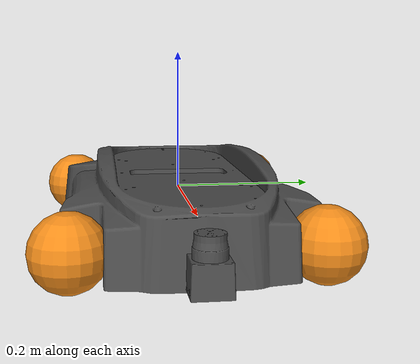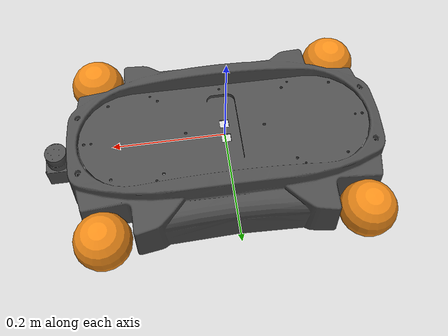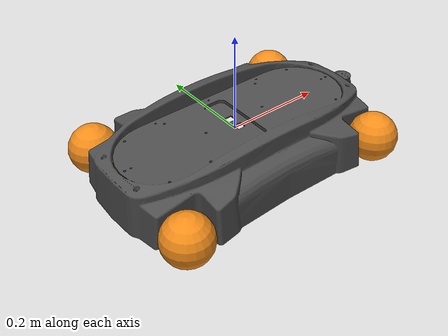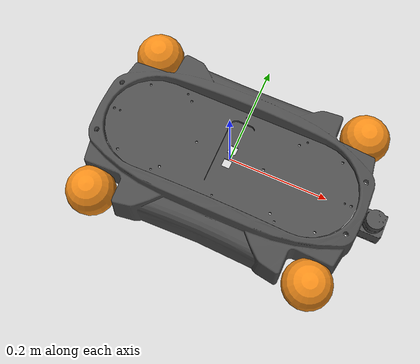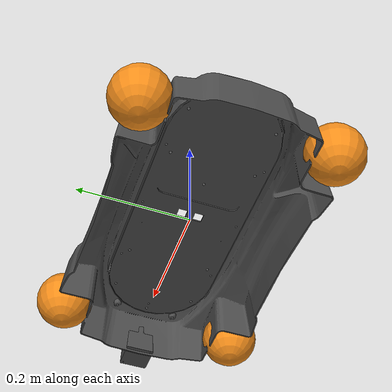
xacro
<?xml version="1.0"?>
<robot  xmlns:xacro="http://ros.org/wiki/xacro"
       name="youbot" >

  <!-- The following xacro:included files set up definitions of parts of the robot body -->
  <!-- misc common stuff? -->
  <xacro:include filename="$(find youbot_description)/urdf/common.xacro" />

  <!-- youbot base -->
  <xacro:include filename="$(find youbot_description)/urdf/youbot_base/base.urdf.xacro" />

  <!-- generic simulator_gazebo plugins for starting mechanism control, ros time, ros battery -->
  <xacro:include filename="$(find youbot_description)/gazebo/gazebo.urdf.xacro" />

  <!-- materials for visualization -->
  <xacro:include filename="$(find youbot_description)/urdf/materials.urdf.xacro" />

  <!-- Now we can start using the macros xacro:included above to define the actual youbot -->

  <xacro:youbot_base name="base"/>

</robot>

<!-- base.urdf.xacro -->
<robot xmlns:xacro="http://ros.org/wiki/xacro">

	<!-- sensors -->
	<xacro:include filename="$(find youbot_description)/urdf/sensors/hokuyo_urg04_laser.urdf.xacro"/>

	<xacro:include filename="$(find youbot_description)/urdf/youbot_base/base.gazebo.xacro" />
	<xacro:include filename="$(find youbot_description)/urdf/youbot_base/base.transmission.xacro" />

 	<!-- simplified box collision geometry for base -->
  	<property name="base_size_x" value="0.570" />
  	<property name="base_size_y" value="0.360" />
  	<property name="base_size_z" value="0.100" />
	<property name="base_mass" value="22.0" />

	<property name="caster_offset_x" value="0.228"  />
  	<property name="caster_offset_y" value="0.158"  />
  	<property name="caster_offset_z" value="-0.034" />
	<property name="caster_mass" value="0.1" />

	<property name="wheel_offset_x" value="0.0"  />
  	<property name="wheel_offset_y" value="0.0"  />
  	<property name="wheel_offset_z" value="0.0" />
	<property name="wheel_mass" value="0.4" />

	<property name="wheel_radius" value="0.05" />
	<property name="wheel_length" value="0.005" />

	<property name="caster_joint_damping" value="1.0" />
	<property name="caster_joint_friction" value="1.0" />
	<property name="caster_joint_effort" value="30" />
	<property name="caster_joint_velocity" value="10" />
	<property name="caster_joint_safety_k_velocity" value="10.0" />

	<property name="wheel_joint_damping" value="1.0" />
	<property name="wheel_joint_friction" value="1.0" />
	<property name="wheel_joint_effort" value="30" />
	<property name="wheel_joint_velocity" value="10" />
	<property name="wheel_joint_safety_k_velocity" value="10.0" />

	<xacro:macro name="youbot_base" params="name">

		<link name="${name}_footprint">
    		</link>

    		<joint name="${name}_footprint_fixer" type="fixed">
      			<origin xyz="0 0 0" rpy="0 0 0" />
      			<child link="${name}_footprint_inertia" />
      			<parent link="${name}_footprint"/>
    		</joint>

		<link name="${name}_footprint_inertia">
      			<inertial>
        			<mass value="0.1" />
        			<origin xyz="0 0 ${-base_size_z / 2.0}" rpy="0 0 0" />
        			<inertia ixx="1.0" ixy="0.0" ixz="0.0"
                 			iyy="1.0" iyz="0.0" izz="1.0" />
      				</inertial>
      			<visual>
        			<origin xyz="0 0 0" rpy="0 0 0" />
        			<geometry>
          				<box size="0.001 0.001 0.001" />
        			</geometry>
               			<material name="Red" />
      			</visual>
      			<collision>
        			<origin xyz="0 0 ${-base_size_z / 2.0}" rpy="0 0 0" />
        			<geometry>
          				<box size="0.001 0.001 0.001" />
        			</geometry>
      			</collision>
    		</link>

    		<joint name="${name}_footprint_joint" type="fixed">
      			<origin xyz="0 0 0" rpy="0 0 0" />
      			<child link="${name}_link" />
      			<parent link="${name}_footprint"/>
    		</joint>

		<link name="${name}_link">
      			<inertial>
        			<mass value="${base_mass}" />
        			<origin xyz="0 0 0" />
        			<inertia ixx="5.652232699207" ixy="-0.009719934438" ixz="1.293988226423"
                 			iyy="5.669473158652" iyz="-0.007379583694" izz="3.683196351726" />
      				</inertial>
      			<visual>
        			<origin xyz="0 0 0" rpy="0 0 0" />
        			<geometry>
          				<mesh filename="package://youbot_description/meshes/youbot_base/base.dae"/>
        			</geometry>
        			<material name="DarkGrey"/>
      			</visual>
      			<collision>
        			<origin xyz="0 0 0" rpy="0 0 0" />
        			<geometry>
					<mesh filename="package://youbot_description/meshes/youbot_base/base_convex.dae"/>
	       			</geometry>
      			</collision>
    		</link>

		<!-- base laser front -->

    		<xacro:hokuyo_urg04_laser name="${name}_laser_front" parent="${name}" ros_topic="scan_front" update_rate="10" min_angle="-1.57" max_angle="1.57" >
     			 <origin xyz="0.3 0 -0.03" rpy="0 0 0" />
    		</xacro:hokuyo_urg04_laser>

	<!-- front left wheel -->
		<joint name="caster_joint_fl" type="continuous">
			<origin xyz="${caster_offset_x} ${caster_offset_y} ${caster_offset_z}" rpy="0 0 0" />
      			<axis xyz="0 0 1" />
      			<limit effort="${caster_joint_effort}" velocity="${caster_joint_velocity}"/>
      			<dynamics damping="${caster_joint_damping}" friction="${caster_joint_friction}" />
			<safety_controller k_velocity="${caster_joint_safety_k_velocity}" />
			<parent link="${name}_link"/>
      			<child link="caster_link_fl" />
    		</joint>

		<link name="caster_link_fl">
      			<inertial>
        			<mass value="${caster_mass}" />
        			<origin xyz="0 0 0" />
        			<inertia  ixx="0.012411765597" ixy="-0.000711733678" ixz="0.00050272983"
                  			iyy="0.015218160428" iyz="-0.000004273467" izz="0.011763977943" />
      			</inertial>
   		</link>

		<joint name="wheel_joint_fl" type="continuous">
      			<axis xyz="0 1 0" />
      			<limit effort="${wheel_joint_effort}" velocity="${wheel_joint_velocity}"/>
            		<origin xyz="${wheel_offset_x} ${wheel_offset_y} ${wheel_offset_z}" rpy="0 0 0" />
      			<parent link="caster_link_fl"/>
			<dynamics damping="${wheel_joint_damping}" friction="${wheel_joint_friction}" />
			<safety_controller k_velocity="${wheel_joint_safety_k_velocity}" />
      			<child link="wheel_link_fl"/>
     		</joint>

    		<link name="wheel_link_fl">
      			<inertial>
        		<mass value="${wheel_mass}" />
        		<origin xyz="0 0 0" />
       			<inertia  ixx="0.012411765597" ixy="-0.000711733678" ixz="0.00050272983"
                  		iyy="0.015218160428" iyz="-0.000004273467" izz="0.011763977943" />
      			</inertial>
      			<visual>
        			<origin xyz="0 0 0" rpy="0 0 0" />
				<geometry>
					<sphere radius="${wheel_radius}"/>
				</geometry>
       				<material name="Orange" />
      			</visual>
      			<collision>
        			<origin xyz="0 0 0" rpy="${M_PI/2} 0 0" />
        			<geometry>
        		       		<cylinder radius="${wheel_radius}" length="${wheel_radius}" />
        	       		</geometry>
      			</collision>
    		</link>

	<!-- front right wheel -->
		<joint name="caster_joint_fr" type="continuous">
			<origin xyz="${caster_offset_x} ${-caster_offset_y} ${caster_offset_z}" rpy="0 0 0" />
      			<axis xyz="0 0 1" />
      			<limit effort="${caster_joint_effort}" velocity="${caster_joint_velocity}"/>
      			<dynamics damping="${caster_joint_damping}" friction="${caster_joint_friction}" />
			<safety_controller k_velocity="${caster_joint_safety_k_velocity}" />
			<parent link="${name}_link"/>
      			<child link="caster_link_fr" />
    		</joint>

		<link name="caster_link_fr">
      			<inertial>
        			<mass value="${caster_mass}" />
        			<origin xyz="0 0 0" />
        			<inertia  ixx="0.012411765597" ixy="-0.000711733678" ixz="0.00050272983"
                  			iyy="0.015218160428" iyz="-0.000004273467" izz="0.011763977943" />
      				</inertial>
   		</link>

		<joint name="wheel_joint_fr" type="continuous">
      			<axis xyz="0 1 0" />
      			<limit effort="${wheel_joint_effort}" velocity="${wheel_joint_velocity}"/>
            		<dynamics damping="${wheel_joint_damping}" friction="${wheel_joint_friction}" />
			<safety_controller k_velocity="${wheel_joint_safety_k_velocity}" />
      			<origin xyz="${wheel_offset_x} ${wheel_offset_y} ${wheel_offset_z}" rpy="0 0 0" />
      			<parent link="caster_link_fr"/>
      			<child link="wheel_link_fr"/>
     		</joint>

    		<link name="wheel_link_fr">
      			<inertial>
        		<mass value="${wheel_mass}" />
        		<origin xyz="0 0 0" />
       			<inertia  ixx="0.012411765597" ixy="-0.000711733678" ixz="0.00050272983"
                  		iyy="0.015218160428" iyz="-0.000004273467" izz="0.011763977943" />
      			</inertial>
      			<visual>
        			<origin xyz="0 0 0" rpy="0 0 0" />
				<geometry>
					<sphere radius="${wheel_radius}"/>
        			</geometry>
       				<material name="Orange" />
      			</visual>
      			<collision>
        			<origin xyz="0 0 0" rpy="${M_PI/2} 0 0" />
        			<geometry>
        		       		<cylinder radius="${wheel_radius}" length="${wheel_radius}" />
        	       		</geometry>
      			</collision>
    		</link>

	<!-- back left wheel -->
		<joint name="caster_joint_bl" type="continuous">
			<origin xyz="${-caster_offset_x} ${caster_offset_y} ${caster_offset_z}" rpy="0 0 0" />
      			<axis xyz="0 0 1" />
      			<limit effort="${caster_joint_effort}" velocity="${caster_joint_velocity}"/>
      			<dynamics damping="${caster_joint_damping}" friction="${caster_joint_friction}" />
			<safety_controller k_velocity="${caster_joint_safety_k_velocity}" />
			<parent link="${name}_link"/>
      			<child link="caster_link_bl" />
    		</joint>

		<link name="caster_link_bl">
      			<inertial>
        			<mass value="${caster_mass}" />
        			<origin xyz="0 0 0" />
        			<inertia  ixx="0.012411765597" ixy="-0.000711733678" ixz="0.00050272983"
                  			iyy="0.015218160428" iyz="-0.000004273467" izz="0.011763977943" />
      				</inertial>
   		</link>

		<joint name="wheel_joint_bl" type="continuous">
      			<axis xyz="0 1 0" />
      			<limit effort="10" velocity="10"/>
			<limit effort="${wheel_joint_effort}" velocity="${wheel_joint_velocity}"/>
			<dynamics damping="${wheel_joint_damping}" friction="${wheel_joint_friction}" />
			<safety_controller k_velocity="${wheel_joint_safety_k_velocity}" />
      			<origin xyz="${wheel_offset_x} ${wheel_offset_y} ${wheel_offset_z}" rpy="0 0 0" />
      			<parent link="caster_link_bl"/>
      			<child link="wheel_link_bl"/>
     		</joint>

    		<link name="wheel_link_bl">
      			<inertial>
        		<mass value="${wheel_mass}" />
        		<origin xyz="0 0 0" />
       			<inertia  ixx="0.012411765597" ixy="-0.000711733678" ixz="0.00050272983"
                  		iyy="0.015218160428" iyz="-0.000004273467" izz="0.011763977943" />
      			</inertial>
      			<visual>
        			<origin xyz="0 0 0" rpy="0 0 0" />
				<geometry>
					<sphere radius="${wheel_radius}"/>
        			</geometry>
       				<material name="Orange" />
      			</visual>
      			<collision>
        			<origin xyz="0 0 0" rpy="${M_PI/2} 0 0" />
        			<geometry>
        		       		<cylinder radius="${wheel_radius}" length="${wheel_radius}" />
        	       		</geometry>
      			</collision>
    		</link>

	<!-- back right wheel -->
		<joint name="caster_joint_br" type="continuous">
			<origin xyz="${-caster_offset_x} ${-caster_offset_y} ${caster_offset_z}" rpy="0 0 0" />
      			<axis xyz="0 0 1" />
      			<limit effort="${caster_joint_effort}" velocity="${caster_joint_velocity}"/>
      			<dynamics damping="${caster_joint_damping}" friction="${caster_joint_friction}" />
			<safety_controller k_velocity="${caster_joint_safety_k_velocity}" />
			<parent link="${name}_link"/>
      			<child link="caster_link_br" />
    		</joint>

		<link name="caster_link_br">
      			<inertial>
        			<mass value="${caster_mass}" />
        			<origin xyz="0 0 0" />
        			<inertia  ixx="0.012411765597" ixy="-0.000711733678" ixz="0.00050272983"
                  			iyy="0.015218160428" iyz="-0.000004273467" izz="0.011763977943" />
      				</inertial>
   		</link>

		<joint name="wheel_joint_br" type="continuous">
      			<axis xyz="0 1 0" />
      			<limit effort="${wheel_joint_effort}" velocity="${wheel_joint_velocity}"/>
            		<dynamics damping="${wheel_joint_damping}" friction="${wheel_joint_friction}" />
			<safety_controller k_velocity="${wheel_joint_safety_k_velocity}" />
      			<origin xyz="${wheel_offset_x} ${wheel_offset_y} ${wheel_offset_z}" rpy="0 0 0" />
      			<parent link="caster_link_br"/>
      			<child link="wheel_link_br"/>
     		</joint>

    		<link name="wheel_link_br">
      			<inertial>
        		<mass value="${wheel_mass}" />
        		<origin xyz="0 0 0" />
       			<inertia  ixx="0.012411765597" ixy="-0.000711733678" ixz="0.00050272983"
                  		iyy="0.015218160428" iyz="-0.000004273467" izz="0.011763977943" />
      			</inertial>
      			<visual>
        			<origin xyz="0 0 0" rpy="0 0 0" />
				<geometry>
					<sphere radius="${wheel_radius}"/>
        			</geometry>
       				<material name="Orange" />
      			</visual>
      			<collision>
        			<origin xyz="0 0 0" rpy="${M_PI/2} 0 0" />
        			<geometry>
        		       		<cylinder radius="${wheel_radius}" length="${wheel_radius}" />
        	       		</geometry>
      			</collision>
    		</link>

	<!-- extensions -->
		<xacro:youbot_base_gazebo />
		<xacro:youbot_base_transmission />

	</xacro:macro>

</robot>

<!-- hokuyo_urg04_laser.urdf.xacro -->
<robot xmlns:xacro="http://ros.org/wiki/xacro">

  <xacro:include filename="$(find youbot_description)/urdf/sensors/hokuyo_urg04_laser.gazebo.xacro" />

  <xacro:macro name="hokuyo_urg04_laser" params="name parent *origin ros_topic update_rate min_angle max_angle">
    <joint name="${name}_hokuyo_urg04_laser_joint" type="fixed">
      <axis xyz="0 1 0" />
      <insert_block name="origin" />
      <parent link="${parent}_link"/>
      <child link="${name}_link"/>
    </joint>
    <link name="${name}_link" type="laser">
      <inertial>
        <mass value="0.16" />
        <origin xyz="0 0 0" rpy="0 0 0" />
        <inertia ixx="0.1" ixy="0" ixz="0" iyy="0.1" iyz="0" izz="0.1" />
      </inertial>
      <visual>
      	<origin xyz="0 0 0" rpy="0 0 0" />
	<geometry>
		<mesh filename="package://youbot_description/meshes/sensors/hokuyo.dae" />
	</geometry>
	<material name="DarkGrey" />
      </visual>

      <collision>
		<origin xyz="0 0 0" rpy="0 0 0" />
		<geometry>
			<mesh filename="package://youbot_description/meshes/sensors/hokuyo_convex.dae" />

		</geometry>
	</collision>
    </link>
    <!-- gazebo extensions -->
    <xacro:hokuyo_urg04_laser_gazebo name="${name}" ros_topic="${ros_topic}" update_rate="${update_rate}" min_angle="${min_angle}" max_angle="${max_angle}" />
  </xacro:macro>
</robot>
